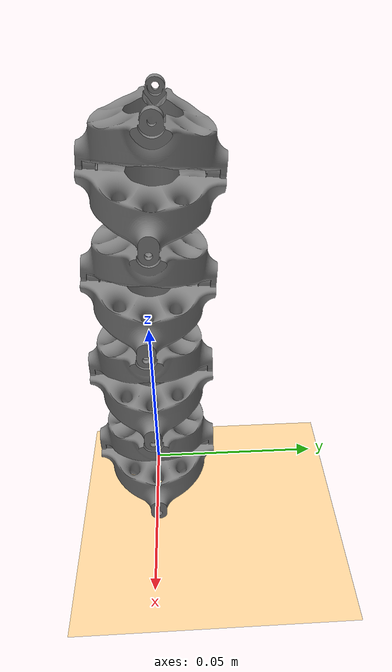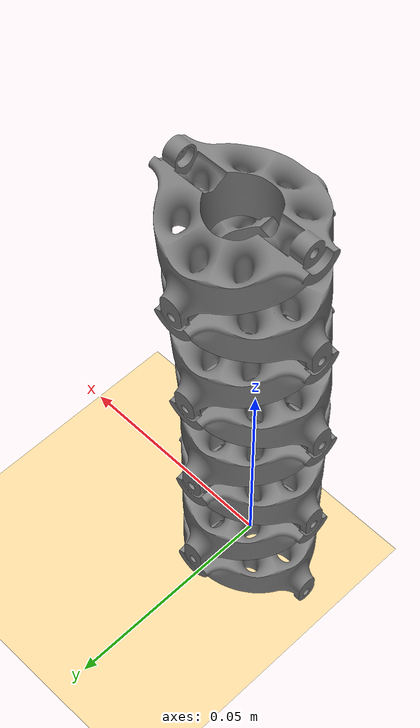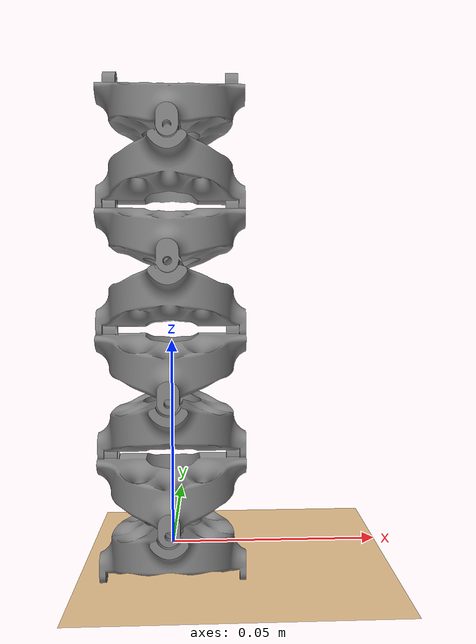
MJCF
<mujoco model="30mm_one_segment">
    <compiler angle="radian" eulerseq="XYZ" />
    <asset>
        <mesh name="mesh_component2" file="meshes/mesh_component2.stl" scale="0.001 0.001 0.001" />\ // The mesh file for the component
    </asset>
    <worldbody>
        <light directional="true" pos="-0.5 0.5 3" dir="0 0 -1" /> // A light source
        <geom pos="0 0 -0.01" size="1 1 1" type="plane" rgba="1 0.83 0.61 0.5" /> // A ground plane

        <body name="comp_root" pos="0.0 0.0 0.0" euler="0.0 0.0 0.0">
            <geom name="geom_comp_root" type="mesh" mesh="mesh_component2" pos="0 0 0" euler="0 0 0" />
            <inertial mass="0.034962578305385045" pos="-7.472585541467528e-08 7.901881324749933e-09 0.00013813391178014084" fullinertia="3.055182113221844e-06 2.848652002682884e-06 5.213750324900917e-06 -4.694970745810055e-12 -1.2612174129223041e-11 1.8838018378797825e-12" />

            <body name="comp_1" pos="1.1102230246251566e-18 -1.7763568394002505e-17 0.015" euler="-6.123233995736765e-17 -4.930380657631328e-32 -1.5707963267948968">
                <joint name="rotation-1" type="hinge" axis="1 2.220446049250335e-16 9.459870649918561e-16" pos="0.01793999999999997 3.332499737410193e-18 -0.007499999999999979" />
                <geom name="geom_comp_1" type="mesh" mesh="mesh_component2" pos="0 0 0" euler="0 0 0" />
                <inertial mass="0.034962578305385045" pos="-7.472585541454448e-08 7.901881324746635e-09 0.00013813391178014496" fullinertia="3.0551821132218284e-06 2.8486520026829268e-06 5.213750324900907e-06 -4.694970745810085e-12 -1.2612174121400085e-11 1.8838018376833885e-12" />

                <body name="comp_2" pos="-3.1435916855538975e-17 1.1286600475013078e-17 0.015" euler="6.123233995736771e-17 2.711709361697241e-31 1.5707963267948963">
                    <joint name="rotation-2" type="hinge" axis="1 5.665538897648013e-16 1.0072194049492237e-15" pos="-2.1736177992490477e-17 0.017940000000000077 -0.02249999999999998" />
                    <geom name="geom_comp_2" type="mesh" mesh="mesh_component2" pos="0 0 0" euler="0 0 0" />
                    <inertial mass="0.034962578305385045" pos="-7.472585541454448e-08 7.901881324746635e-09 0.00013813391178014273" fullinertia="3.0551821132218267e-06 2.84865200268293e-06 5.213750324900907e-06 -4.694970745810085e-12 -1.2612174121400085e-11 1.8838018376833877e-12" />

                    <body name="comp_3" pos="-1.6982327090063196e-17 -9.821064446816138e-17 0.015" euler="-6.123233995736765e-17 -2.465190328815674e-32 -1.5707963267948963">
                        <joint name="rotation-3" type="hinge" axis="1 2.220446049250335e-16 1.0072194049492235e-15" pos="0.01793999999999989 -2.4999871341683295e-18 -0.037499999999999985" />
                        <geom name="geom_comp_3" type="mesh" mesh="mesh_component2" pos="0 0 0" euler="0 0 0" />
                        <inertial mass="0.034962578305385045" pos="-7.47258554145445e-08 7.901881324746637e-09 0.00013813391178014273" fullinertia="3.0551821132218403e-06 2.84865200268293e-06 5.213750324900907e-06 -4.694970745810085e-12 -1.2612174121400085e-11 1.883801837683387e-12" />

                        <body name="comp_4" pos="-0.0006536680706074506 1.0328876273380923e-16 0.015" euler="-0.08726646259971796 7.395570986447022e-32 1.5707963267948963">
                            <joint name="rotation-4" type="hinge" axis="1 5.537244810286261e-16 1.1173641548954435e-15" pos="-1.1934632759344851e-16 0.02179374130741077 -0.05076518738923551" />
                            <geom name="geom_comp_4" type="mesh" mesh="mesh_component2" pos="0 0 0" euler="0 0 0" />
                            <inertial mass="0.034962578305385045" pos="-7.472585541454448e-08 7.901881324015413e-09 0.00013813391178015038" fullinertia="3.055182113221813e-06 2.8486520026828874e-06 5.213750324900898e-06 -4.69497074581008e-12 -1.2612174121400061e-11 1.8838018335764905e-12" />

                            <body name="comp_5" pos="-1.6857852183800285e-17 -9.769962616701378e-17 0.015" euler="-6.123233995736664e-17 -0.0 -1.5707963267948963">
                                <joint name="rotation-5" type="hinge" axis="1 2.0921521031216163e-16 2.2996038091804838e-07" pos="0.013949724460121028 -9.693769851317469e-17 -0.06889233543902153" />
                                <geom name="geom_comp_5" type="mesh" mesh="mesh_component2" pos="0 0 0" euler="0 0 0" />
                                <inertial mass="0.034962578305385045" pos="-7.472585541496629e-08 7.901881324746634e-09 0.0001381339117801356" fullinertia="3.0551821132218623e-06 2.8486520026829437e-06 5.213750324900904e-06 -4.694970745810083e-12 -1.261217412324965e-11 1.883801837683382e-12" />

                                <body name="comp_6" pos="-7.216449660063518e-18 9.983601960961502e-17 0.015" euler="1.2490009027033014e-16 -1.7256332301709719e-31 1.5707963267948963">
                                    <joint name="rotation-6" type="hinge" axis="1 5.537244810286261e-16 1.1785964948528107e-15" pos="-2.1212196494271593e-16 0.021793741307410876 -0.08076518738923547" />
                                    <geom name="geom_comp_6" type="mesh" mesh="mesh_component2" pos="0 0 0" euler="0 0 0" />
                                    <inertial mass="0.034962578305385045" pos="-7.472585541454451e-08 7.901881323397079e-09 0.00013813391178015924" fullinertia="3.0551821132217047e-06 2.8486520026828886e-06 5.213750324900898e-06 -4.6949707458100755e-12 -1.261217412140013e-11 1.883801832570639e-12" />

                                    <body name="comp_7" pos="-1.6857852183800538e-17 -9.880984919163893e-17 0.015" euler="-6.123233995736802e-17 -0.0 -1.5707963267948963">
                                        <joint name="rotation-7" type="hinge" axis="1 2.0921519623114963e-16 2.2996038098743732e-07" pos="0.013949724460120938 -1.8768488307123973e-16 -0.09889233543902169" />
                                        <geom name="geom_comp_7" type="mesh" mesh="mesh_component2" pos="0 0 0" euler="0 0 0" />
                                        <inertial mass="0.034962578305385045" pos="-7.472585541316211e-08 7.901881324746632e-09 0.00013813391178015339" fullinertia="3.0551821132217585e-06 2.8486520026828353e-06 5.213750324900921e-06 -4.6949707458100884e-12 -1.2612174111020612e-11 1.883801837683386e-12" />
                                    </body>
                                </body>
                            </body>
                        </body>
                    </body>
                </body>
            </body>
        </body>
    </worldbody>
</mujoco>
